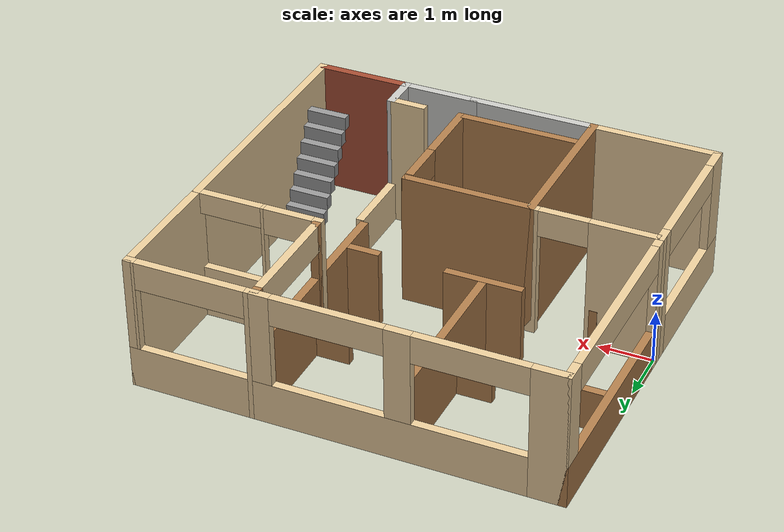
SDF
<?xml version='1.0'?>
<sdf version='1.5'>
  <model name='officeFloor'>
    <pose frame=''>3.815 0.61 0 0 -0 0</pose>
    <link name='Stairs_2'>
      <visual name='Stairs_2_Visual_0'>
        <pose frame=''>3.37694 -1.65753 0.125 0 -0 0</pose>
        <geometry>
          <box>
            <size>0.8 0.16125 0.25</size>
          </box>
        </geometry>
        <material>
          <script>
            <uri>file://media/materials/scripts/gazebo.material</uri>
            <name>Gazebo/Grey</name>
          </script>
          <ambient>1 1 1 1</ambient>
        </material>
        <meta>
          <layer>0</layer>
        </meta>
      </visual>
      <collision name='Stairs_2_Collision_0'>
        <geometry>
          <box>
            <size>0.8 0.16125 0.25</size>
          </box>
        </geometry>
        <pose frame=''>3.37694 -1.65753 0.125 0 -0 0</pose>
      </collision>
      <visual name='Stairs_2_Visual_1'>
        <pose frame=''>3.37694 -1.81879 0.375 0 -0 0</pose>
        <geometry>
          <box>
            <size>0.8 0.16125 0.25</size>
          </box>
        </geometry>
        <material>
          <script>
            <uri>file://media/materials/scripts/gazebo.material</uri>
            <name>Gazebo/Grey</name>
          </script>
          <ambient>1 1 1 1</ambient>
        </material>
        <meta>
          <layer>0</layer>
        </meta>
      </visual>
      <collision name='Stairs_2_Collision_1'>
        <geometry>
          <box>
            <size>0.8 0.16125 0.25</size>
          </box>
        </geometry>
        <pose frame=''>3.37694 -1.81879 0.375 0 -0 0</pose>
      </collision>
      <visual name='Stairs_2_Visual_2'>
        <pose frame=''>3.37694 -1.98003 0.625 0 -0 0</pose>
        <geometry>
          <box>
            <size>0.8 0.16125 0.25</size>
          </box>
        </geometry>
        <material>
          <script>
            <uri>file://media/materials/scripts/gazebo.material</uri>
            <name>Gazebo/Grey</name>
          </script>
          <ambient>1 1 1 1</ambient>
        </material>
        <meta>
          <layer>0</layer>
        </meta>
      </visual>
      <collision name='Stairs_2_Collision_2'>
        <geometry>
          <box>
            <size>0.8 0.16125 0.25</size>
          </box>
        </geometry>
        <pose frame=''>3.37694 -1.98003 0.625 0 -0 0</pose>
      </collision>
      <visual name='Stairs_2_Visual_3'>
        <pose frame=''>3.37694 -2.14128 0.875 0 -0 0</pose>
        <geometry>
          <box>
            <size>0.8 0.16125 0.25</size>
          </box>
        </geometry>
        <material>
          <script>
            <uri>file://media/materials/scripts/gazebo.material</uri>
            <name>Gazebo/Grey</name>
          </script>
          <ambient>1 1 1 1</ambient>
        </material>
        <meta>
          <layer>0</layer>
        </meta>
      </visual>
      <collision name='Stairs_2_Collision_3'>
        <geometry>
          <box>
            <size>0.8 0.16125 0.25</size>
          </box>
        </geometry>
        <pose frame=''>3.37694 -2.14128 0.875 0 -0 0</pose>
      </collision>
      <visual name='Stairs_2_Visual_4'>
        <pose frame=''>3.37694 -2.30254 1.125 0 -0 0</pose>
        <geometry>
          <box>
            <size>0.8 0.16125 0.25</size>
          </box>
        </geometry>
        <material>
          <script>
            <uri>file://media/materials/scripts/gazebo.material</uri>
            <name>Gazebo/Grey</name>
          </script>
          <ambient>1 1 1 1</ambient>
        </material>
        <meta>
          <layer>0</layer>
        </meta>
      </visual>
      <collision name='Stairs_2_Collision_4'>
        <geometry>
          <box>
            <size>0.8 0.16125 0.25</size>
          </box>
        </geometry>
        <pose frame=''>3.37694 -2.30254 1.125 0 -0 0</pose>
      </collision>
      <visual name='Stairs_2_Visual_5'>
        <pose frame=''>3.37694 -2.46379 1.375 0 -0 0</pose>
        <geometry>
          <box>
            <size>0.8 0.16125 0.25</size>
          </box>
        </geometry>
        <material>
          <script>
            <uri>file://media/materials/scripts/gazebo.material</uri>
            <name>Gazebo/Grey</name>
          </script>
          <ambient>1 1 1 1</ambient>
        </material>
        <meta>
          <layer>0</layer>
        </meta>
      </visual>
      <collision name='Stairs_2_Collision_5'>
        <geometry>
          <box>
            <size>0.8 0.16125 0.25</size>
          </box>
        </geometry>
        <pose frame=''>3.37694 -2.46379 1.375 0 -0 0</pose>
      </collision>
      <visual name='Stairs_2_Visual_6'>
        <pose frame=''>3.37694 -2.62504 1.625 0 -0 0</pose>
        <geometry>
          <box>
            <size>0.8 0.16125 0.25</size>
          </box>
        </geometry>
        <material>
          <script>
            <uri>file://media/materials/scripts/gazebo.material</uri>
            <name>Gazebo/Grey</name>
          </script>
          <ambient>1 1 1 1</ambient>
        </material>
        <meta>
          <layer>0</layer>
        </meta>
      </visual>
      <collision name='Stairs_2_Collision_6'>
        <geometry>
          <box>
            <size>0.8 0.16125 0.25</size>
          </box>
        </geometry>
        <pose frame=''>3.37694 -2.62504 1.625 0 -0 0</pose>
      </collision>
      <visual name='Stairs_2_Visual_7'>
        <pose frame=''>3.37694 -2.78628 1.875 0 -0 0</pose>
        <geometry>
          <box>
            <size>0.8 0.16125 0.25</size>
          </box>
        </geometry>
        <material>
          <script>
            <uri>file://media/materials/scripts/gazebo.material</uri>
            <name>Gazebo/Grey</name>
          </script>
          <ambient>1 1 1 1</ambient>
        </material>
        <meta>
          <layer>0</layer>
        </meta>
      </visual>
      <collision name='Stairs_2_Collision_7'>
        <geometry>
          <box>
            <size>0.8 0.16125 0.25</size>
          </box>
        </geometry>
        <pose frame=''>3.37694 -2.78628 1.875 0 -0 0</pose>
      </collision>
    </link>
    <link name='Wall_105'>
      <collision name='Wall_105_Collision'>
        <geometry>
          <box>
            <size>0.76 0.15 0.76</size>
          </box>
        </geometry>
        <pose frame=''>0 0 0.38 0 -0 0</pose>
      </collision>
      <visual name='Wall_105_Visual'>
        <pose frame=''>0 0 0.38 0 -0 0</pose>
        <geometry>
          <box>
            <size>0.76 0.15 0.76</size>
          </box>
        </geometry>
        <material>
          <script>
            <uri>file://media/materials/scripts/gazebo.material</uri>
            <name>Gazebo/Wood</name>
          </script>
          <ambient>1 1 1 1</ambient>
        </material>
        <meta>
          <layer>0</layer>
        </meta>
      </visual>
      <pose frame=''>-3.489 1.525 0 0 -0 0</pose>
    </link>
    <link name='Wall_108'>
      <collision name='Wall_108_Collision'>
        <geometry>
          <box>
            <size>3.26 0.15 1.46</size>
          </box>
        </geometry>
        <pose frame=''>-0.2 0 0.73 0 -0 0</pose>
      </collision>
      <visual name='Wall_108_Visual'>
        <pose frame=''>-0.2 0 0.73 0 -0 0</pose>
        <geometry>
          <box>
            <size>3.26 0.15 1.46</size>
          </box>
        </geometry>
        <material>
          <script>
            <uri>file://media/materials/scripts/gazebo.material</uri>
            <name>Gazebo/Wood</name>
          </script>
          <ambient>1 1 1 1</ambient>
        </material>
        <meta>
          <layer>0</layer>
        </meta>
      </visual>
      <pose frame=''>-1.07 1.748 0 0 -0 -1.5708</pose>
    </link>
    <link name='Wall_110'>
      <collision name='Wall_110_Collision'>
        <geometry>
          <box>
            <size>1.75 0.15 0.76</size>
          </box>
        </geometry>
        <pose frame=''>0 0 0.38 0 -0 0</pose>
      </collision>
      <visual name='Wall_110_Visual'>
        <pose frame=''>0 0 0.38 0 -0 0</pose>
        <geometry>
          <box>
            <size>1.75 0.15 0.76</size>
          </box>
        </geometry>
        <material>
          <script>
            <uri>file://media/materials/scripts/gazebo.material</uri>
            <name>Gazebo/Wood</name>
          </script>
          <ambient>1 1 1 1</ambient>
        </material>
        <meta>
          <layer>0</layer>
        </meta>
      </visual>
      <pose frame=''>-2.724 -1.403 0 0 -0 -1.5708</pose>
    </link>
    <link name='Wall_112'>
      <collision name='Wall_112_Collision'>
        <geometry>
          <box>
            <size>0.76 0.15 0.76</size>
          </box>
        </geometry>
        <pose frame=''>0 0 0.38 0 -0 0</pose>
      </collision>
      <visual name='Wall_112_Visual'>
        <pose frame=''>0 0 0.38 0 -0 0</pose>
        <geometry>
          <box>
            <size>0.76 0.15 0.76</size>
          </box>
        </geometry>
        <material>
          <script>
            <uri>file://media/materials/scripts/gazebo.material</uri>
            <name>Gazebo/Wood</name>
          </script>
          <ambient>1 1 1 1</ambient>
        </material>
        <meta>
          <layer>0</layer>
        </meta>
      </visual>
      <pose frame=''>1.215 1.525 0 0 -0 3.14159</pose>
    </link>
    <link name='Wall_114'>
      <collision name='Wall_114_Collision'>
        <geometry>
          <box>
            <size>0.82 0.15 0.76</size>
          </box>
        </geometry>
        <pose frame=''>0 0 0.38 0 -0 0</pose>
      </collision>
      <visual name='Wall_114_Visual'>
        <pose frame=''>0 0 0.38 0 -0 0</pose>
        <geometry>
          <box>
            <size>0.82 0.15 0.76</size>
          </box>
        </geometry>
        <material>
          <script>
            <uri>file://media/materials/scripts/gazebo.material</uri>
            <name>Gazebo/Wood</name>
          </script>
          <ambient>1 1 1 1</ambient>
        </material>
        <meta>
          <layer>0</layer>
        </meta>
      </visual>
      <pose frame=''>-1.37 1.525 0 0 -0 3.14159</pose>
    </link>
    <link name='Wall_116'>
      <collision name='Wall_116_Collision'>
        <geometry>
          <box>
            <size>0.76 0.15 0.76</size>
          </box>
        </geometry>
        <pose frame=''>0 0 0.38 0 -0 0</pose>
      </collision>
      <visual name='Wall_116_Visual'>
        <pose frame=''>0 0 0.38 0 -0 0</pose>
        <geometry>
          <box>
            <size>0.76 0.15 0.76</size>
          </box>
        </geometry>
        <material>
          <script>
            <uri>file://media/materials/scripts/gazebo.material</uri>
            <name>Gazebo/Wood</name>
          </script>
          <ambient>1 1 1 1</ambient>
        </material>
        <meta>
          <layer>0</layer>
        </meta>
      </visual>
      <pose frame=''>-0.73 1.525 0 0 -0 0</pose>
    </link>
    <link name='Wall_118'>
      <collision name='Wall_118_Collision'>
        <geometry>
          <box>
            <size>1.43 0.15 1.46</size>
          </box>
        </geometry>
        <pose frame=''>0 0 0.73 0 -0 0</pose>
      </collision>
      <visual name='Wall_118_Visual'>
        <pose frame=''>0 0 0.73 0 -0 0</pose>
        <geometry>
          <box>
            <size>1.43 0.15 1.46</size>
          </box>
        </geometry>
        <material>
          <script>
            <uri>file://media/materials/scripts/gazebo.material</uri>
            <name>Gazebo/Wood</name>
          </script>
          <ambient>1 1 1 1</ambient>
        </material>
        <meta>
          <layer>0</layer>
        </meta>
      </visual>
      <pose frame=''>-1.065 0.3 0 0 -0 0</pose>
    </link>
    <link name='Wall_50'>
      <pose frame=''>-3.815 1.45 0 0 -0 1.5708</pose>
      <visual name='Wall_50_Visual_0'>
        <pose frame=''>-1.95959 0 1.25 0 -0 0</pose>
        <geometry>
          <box>
            <size>0.35082 0.15 2.5</size>
          </box>
        </geometry>
        <material>
          <script>
            <uri>file://media/materials/scripts/gazebo.material</uri>
            <name>Gazebo/Grey</name>
          </script>
          <ambient>0.921569 0.807843 0.615686 1</ambient>
        </material>
        <meta>
          <layer>0</layer>
        </meta>
      </visual>
      <collision name='Wall_50_Collision_0'>
        <geometry>
          <box>
            <size>0.35082 0.15 2.5</size>
          </box>
        </geometry>
        <pose frame=''>-1.95959 0 1.25 0 -0 0</pose>
      </collision>
      <visual name='Wall_50_Visual_1'>
        <pose frame=''>0.17541 0 0.39 0 -0 0</pose>
        <geometry>
          <box>
            <size>3.91918 0.15 0.78</size>
          </box>
        </geometry>
        <material>
          <script>
            <uri>file://media/materials/scripts/gazebo.material</uri>
            <name>Gazebo/Wood</name>
          </script>
          <ambient>1 1 1 1</ambient>
        </material>
        <meta>
          <layer>0</layer>
        </meta>
      </visual>
      <collision name='Wall_50_Collision_1'>
        <geometry>
          <box>
            <size>3.91918 0.15 0.78</size>
          </box>
        </geometry>
        <pose frame=''>0.17541 0 0.39 0 -0 0</pose>
      </collision>
      <visual name='Wall_50_Visual_2'>
        <pose frame=''>1.92541 0 1.64 0 -0 0</pose>
        <geometry>
          <box>
            <size>0.41918 0.15 1.72</size>
          </box>
        </geometry>
        <material>
          <script>
            <uri>file://media/materials/scripts/gazebo.material</uri>
            <name>Gazebo/Grey</name>
          </script>
          <ambient>0.921569 0.807843 0.615686 1</ambient>
        </material>
        <meta>
          <layer>0</layer>
        </meta>
      </visual>
      <collision name='Wall_50_Collision_2'>
        <geometry>
          <box>
            <size>0.41918 0.15 1.72</size>
          </box>
        </geometry>
        <pose frame=''>1.92541 0 1.64 0 -0 0</pose>
      </collision>
      <visual name='Wall_50_Visual_3'>
        <pose frame=''>-0.03418 0 2.24 0 -0 0</pose>
        <geometry>
          <box>
            <size>3.5 0.15 0.52</size>
          </box>
        </geometry>
        <material>
          <script>
            <uri>file://media/materials/scripts/gazebo.material</uri>
            <name>Gazebo/Grey</name>
          </script>
          <ambient>0.921569 0.807843 0.615686 1</ambient>
        </material>
        <meta>
          <layer>0</layer>
        </meta>
      </visual>
      <collision name='Wall_50_Collision_3'>
        <geometry>
          <box>
            <size>3.5 0.15 0.52</size>
          </box>
        </geometry>
        <pose frame=''>-0.03418 0 2.24 0 -0 0</pose>
      </collision>
    </link>
    <link name='Wall_52'>
      <pose frame=''>-2.67 -0.61 0 0 -0 0</pose>
      <visual name='Wall_52_Visual_0'>
        <pose frame=''>-0.560434 0 1.25 0 -0 0</pose>
        <geometry>
          <box>
            <size>1.31913 0.15 2.5</size>
          </box>
        </geometry>
        <material>
          <script>
            <uri>file://media/materials/scripts/gazebo.material</uri>
            <name>Gazebo/Grey</name>
          </script>
          <ambient>0.921569 0.807843 0.615686 1</ambient>
        </material>
        <meta>
          <layer>0</layer>
        </meta>
      </visual>
      <collision name='Wall_52_Collision_0'>
        <geometry>
          <box>
            <size>1.31913 0.15 2.5</size>
          </box>
        </geometry>
        <pose frame=''>-0.560434 0 1.25 0 -0 0</pose>
      </collision>
      <visual name='Wall_52_Visual_1'>
        <pose frame=''>1.10957 0 1.25 0 -0 0</pose>
        <geometry>
          <box>
            <size>0.220869 0.15 2.5</size>
          </box>
        </geometry>
        <material>
          <script>
            <uri>file://media/materials/scripts/gazebo.material</uri>
            <name>Gazebo/Grey</name>
          </script>
          <ambient>0.921569 0.807843 0.615686 1</ambient>
        </material>
        <meta>
          <layer>0</layer>
        </meta>
      </visual>
      <collision name='Wall_52_Collision_1'>
        <geometry>
          <box>
            <size>0.220869 0.15 2.5</size>
          </box>
        </geometry>
        <pose frame=''>1.10957 0 1.25 0 -0 0</pose>
      </collision>
      <visual name='Wall_52_Visual_2'>
        <pose frame=''>0.549131 0 2.25 0 -0 0</pose>
        <geometry>
          <box>
            <size>0.9 0.15 0.5</size>
          </box>
        </geometry>
        <material>
          <script>
            <uri>file://media/materials/scripts/gazebo.material</uri>
            <name>Gazebo/Grey</name>
          </script>
          <ambient>0.921569 0.807843 0.615686 1</ambient>
        </material>
        <meta>
          <layer>0</layer>
        </meta>
      </visual>
      <collision name='Wall_52_Collision_2'>
        <geometry>
          <box>
            <size>0.9 0.15 0.5</size>
          </box>
        </geometry>
        <pose frame=''>0.549131 0 2.25 0 -0 0</pose>
      </collision>
    </link>
    <link name='Wall_54'>
      <pose frame=''>-3.815 -2.06 0 0 -0 -1.5708</pose>
      <visual name='Wall_54_Visual_0'>
        <pose frame=''>-1.34915 0 1.25 0 -0 0</pose>
        <geometry>
          <box>
            <size>0.351709 0.15 2.5</size>
          </box>
        </geometry>
        <material>
          <script>
            <uri>file://media/materials/scripts/gazebo.material</uri>
            <name>Gazebo/Grey</name>
          </script>
          <ambient>0.921569 0.807843 0.615686 1</ambient>
        </material>
        <meta>
          <layer>0</layer>
        </meta>
      </visual>
      <collision name='Wall_54_Collision_0'>
        <geometry>
          <box>
            <size>0.351709 0.15 2.5</size>
          </box>
        </geometry>
        <pose frame=''>-1.34915 0 1.25 0 -0 0</pose>
      </collision>
      <visual name='Wall_54_Visual_1'>
        <pose frame=''>0.175854 0 0.39 0 -0 0</pose>
        <geometry>
          <box>
            <size>2.69829 0.15 0.78</size>
          </box>
        </geometry>
        <material>
          <script>
            <uri>file://media/materials/scripts/gazebo.material</uri>
            <name>Gazebo/Grey</name>
          </script>
          <ambient>0.921569 0.807843 0.615686 1</ambient>
        </material>
        <meta>
          <layer>0</layer>
        </meta>
      </visual>
      <collision name='Wall_54_Collision_1'>
        <geometry>
          <box>
            <size>2.69829 0.15 0.78</size>
          </box>
        </geometry>
        <pose frame=''>0.175854 0 0.39 0 -0 0</pose>
      </collision>
      <visual name='Wall_54_Visual_2'>
        <pose frame=''>1.27585 0 1.64 0 -0 0</pose>
        <geometry>
          <box>
            <size>0.498291 0.15 1.72</size>
          </box>
        </geometry>
        <material>
          <script>
            <uri>file://media/materials/scripts/gazebo.material</uri>
            <name>Gazebo/Grey</name>
          </script>
          <ambient>0.921569 0.807843 0.615686 1</ambient>
        </material>
        <meta>
          <layer>0</layer>
        </meta>
      </visual>
      <collision name='Wall_54_Collision_2'>
        <geometry>
          <box>
            <size>0.498291 0.15 1.72</size>
          </box>
        </geometry>
        <pose frame=''>1.27585 0 1.64 0 -0 0</pose>
      </collision>
      <visual name='Wall_54_Visual_3'>
        <pose frame=''>-0.073291 0 2.24 0 -0 0</pose>
        <geometry>
          <box>
            <size>2.2 0.15 0.52</size>
          </box>
        </geometry>
        <material>
          <script>
            <uri>file://media/materials/scripts/gazebo.material</uri>
            <name>Gazebo/Grey</name>
          </script>
          <ambient>0.921569 0.807843 0.615686 1</ambient>
        </material>
        <meta>
          <layer>0</layer>
        </meta>
      </visual>
      <collision name='Wall_54_Collision_3'>
        <geometry>
          <box>
            <size>2.2 0.15 0.52</size>
          </box>
        </geometry>
        <pose frame=''>-0.073291 0 2.24 0 -0 0</pose>
      </collision>
    </link>
    <link name='Wall_56'>
      <collision name='Wall_56_Collision'>
        <geometry>
          <box>
            <size>3.05 0.15 2.5</size>
          </box>
        </geometry>
        <pose frame=''>0 0 1.25 0 -0 0</pose>
      </collision>
      <visual name='Wall_56_Visual'>
        <pose frame=''>0 0 1.25 0 -0 0</pose>
        <geometry>
          <box>
            <size>3.05 0.15 2.5</size>
          </box>
        </geometry>
        <material>
          <script>
            <uri>file://media/materials/scripts/gazebo.material</uri>
            <name>Gazebo/Wood</name>
          </script>
          <ambient>1 1 1 1</ambient>
        </material>
        <meta>
          <layer>0</layer>
        </meta>
      </visual>
      <pose frame=''>-1.525 -2.06 0 0 -0 -1.5708</pose>
    </link>
    <link name='Wall_58'>
      <collision name='Wall_58_Collision'>
        <geometry>
          <box>
            <size>2.44 0.15 2.5</size>
          </box>
        </geometry>
        <pose frame=''>0 0 1.25 0 -0 0</pose>
      </collision>
      <visual name='Wall_58_Visual'>
        <pose frame=''>0 0 1.25 0 -0 0</pose>
        <geometry>
          <box>
            <size>2.44 0.15 2.5</size>
          </box>
        </geometry>
        <material>
          <script>
            <uri>file://media/materials/scripts/gazebo.material</uri>
            <name>Gazebo/Grey</name>
          </script>
          <ambient>0.921569 0.807843 0.615686 1</ambient>
        </material>
        <meta>
          <layer>0</layer>
        </meta>
      </visual>
      <pose frame=''>-2.67 -3.51 0 0 -0 3.14159</pose>
    </link>
    <link name='Wall_60'>
      <collision name='Wall_60_Collision'>
        <geometry>
          <box>
            <size>2.44 0.15 2.5</size>
          </box>
        </geometry>
        <pose frame=''>0 0 1.25 0 -0 0</pose>
      </collision>
      <visual name='Wall_60_Visual'>
        <pose frame=''>0 0 1.25 0 -0 0</pose>
        <geometry>
          <box>
            <size>2.44 0.15 2.5</size>
          </box>
        </geometry>
        <material>
          <script>
            <uri>file://media/materials/scripts/gazebo.material</uri>
            <name>Gazebo/Wood</name>
          </script>
          <ambient>1 1 1 1</ambient>
        </material>
        <meta>
          <layer>0</layer>
        </meta>
      </visual>
      <pose frame=''>-0.38 -0.61 0 0 -0 0</pose>
    </link>
    <link name='Wall_62'>
      <pose frame=''>0.765 -1.755 0 0 -0 -1.5708</pose>
      <visual name='Wall_62_Visual_0'>
        <pose frame=''>-1.13395 0 1.25 0 -0 0</pose>
        <geometry>
          <box>
            <size>0.172097 0.15 2.5</size>
          </box>
        </geometry>
        <material>
          <script>
            <uri>file://media/materials/scripts/gazebo.material</uri>
            <name>Gazebo/Wood</name>
          </script>
          <ambient>1 1 1 1</ambient>
        </material>
        <meta>
          <layer>0</layer>
        </meta>
      </visual>
      <collision name='Wall_62_Collision_0'>
        <geometry>
          <box>
            <size>0.172097 0.15 2.5</size>
          </box>
        </geometry>
        <pose frame=''>-1.13395 0 1.25 0 -0 0</pose>
      </collision>
      <visual name='Wall_62_Visual_1'>
        <pose frame=''>0.536048 0 1.25 0 -0 0</pose>
        <geometry>
          <box>
            <size>1.3679 0.15 2.5</size>
          </box>
        </geometry>
        <material>
          <script>
            <uri>file://media/materials/scripts/gazebo.material</uri>
            <name>Gazebo/Wood</name>
          </script>
          <ambient>1 1 1 1</ambient>
        </material>
        <meta>
          <layer>0</layer>
        </meta>
      </visual>
      <collision name='Wall_62_Collision_1'>
        <geometry>
          <box>
            <size>1.3679 0.15 2.5</size>
          </box>
        </geometry>
        <pose frame=''>0.536048 0 1.25 0 -0 0</pose>
      </collision>
      <visual name='Wall_62_Visual_2'>
        <pose frame=''>-0.597903 0 2.25 0 -0 0</pose>
        <geometry>
          <box>
            <size>0.9 0.15 0.5</size>
          </box>
        </geometry>
        <material>
          <script>
            <uri>file://media/materials/scripts/gazebo.material</uri>
            <name>Gazebo/Wood</name>
          </script>
          <ambient>1 1 1 1</ambient>
        </material>
        <meta>
          <layer>0</layer>
        </meta>
      </visual>
      <collision name='Wall_62_Collision_2'>
        <geometry>
          <box>
            <size>0.9 0.15 0.5</size>
          </box>
        </geometry>
        <pose frame=''>-0.597903 0 2.25 0 -0 0</pose>
      </collision>
    </link>
    <link name='Wall_64'>
      <collision name='Wall_64_Collision'>
        <geometry>
          <box>
            <size>2.44 0.15 2.5</size>
          </box>
        </geometry>
        <pose frame=''>0 0 1.25 0 -0 0</pose>
      </collision>
      <visual name='Wall_64_Visual'>
        <pose frame=''>0 0 1.25 0 -0 0</pose>
        <geometry>
          <box>
            <size>2.44 0.15 2.5</size>
          </box>
        </geometry>
        <material>
          <script>
            <uri>file://media/materials/scripts/gazebo.material</uri>
            <name>Gazebo/Wood</name>
          </script>
          <ambient>1 1 1 1</ambient>
        </material>
        <meta>
          <layer>0</layer>
        </meta>
      </visual>
      <pose frame=''>-0.38 -2.9 0 0 -0 3.14159</pose>
    </link>
    <link name='Wall_66'>
      <collision name='Wall_66_Collision'>
        <geometry>
          <box>
            <size>2.44 0.15 2.5</size>
          </box>
        </geometry>
        <pose frame=''>0 0 1.25 0 -0 0</pose>
      </collision>
      <visual name='Wall_66_Visual'>
        <pose frame=''>0 0 1.25 0 -0 0</pose>
        <geometry>
          <box>
            <size>2.44 0.15 2.5</size>
          </box>
        </geometry>
        <material>
          <script>
            <uri>file://media/materials/scripts/gazebo.material</uri>
            <name>Gazebo/CeilingTiled</name>
          </script>
          <ambient>1 1 1 1</ambient>
        </material>
        <meta>
          <layer>0</layer>
        </meta>
      </visual>
      <pose frame=''>-0.38 -3.51 0 0 -0 0</pose>
    </link>
    <link name='Wall_68'>
      <pose frame=''>-1.145 3.51 0 0 -0 0</pose>
      <visual name='Wall_68_Visual_0'>
        <pose frame=''>-2.41081 0 1.25 0 -0 0</pose>
        <geometry>
          <box>
            <size>0.668381 0.15 2.5</size>
          </box>
        </geometry>
        <material>
          <script>
            <uri>file://media/materials/scripts/gazebo.material</uri>
            <name>Gazebo/Grey</name>
          </script>
          <ambient>0.921569 0.807843 0.615686 1</ambient>
        </material>
        <meta>
          <layer>0</layer>
        </meta>
      </visual>
      <collision name='Wall_68_Collision_0'>
        <geometry>
          <box>
            <size>0.668381 0.15 2.5</size>
          </box>
        </geometry>
        <pose frame=''>-2.41081 0 1.25 0 -0 0</pose>
      </collision>
      <visual name='Wall_68_Visual_1'>
        <pose frame=''>0.334191 0 0.39 0 -0 0</pose>
        <geometry>
          <box>
            <size>4.82162 0.15 0.78</size>
          </box>
        </geometry>
        <material>
          <script>
            <uri>file://media/materials/scripts/gazebo.material</uri>
            <name>Gazebo/Grey</name>
          </script>
          <ambient>0.921569 0.807843 0.615686 1</ambient>
        </material>
        <meta>
          <layer>0</layer>
        </meta>
      </visual>
      <collision name='Wall_68_Collision_1'>
        <geometry>
          <box>
            <size>4.82162 0.15 0.78</size>
          </box>
        </geometry>
        <pose frame=''>0.334191 0 0.39 0 -0 0</pose>
      </collision>
      <visual name='Wall_68_Visual_2'>
        <pose frame=''>0.15529 0 1.64 0 -0 0</pose>
        <geometry>
          <box>
            <size>0.463818 0.15 1.72</size>
          </box>
        </geometry>
        <material>
          <script>
            <uri>file://media/materials/scripts/gazebo.material</uri>
            <name>Gazebo/Grey</name>
          </script>
          <ambient>0.921569 0.807843 0.615686 1</ambient>
        </material>
        <meta>
          <layer>0</layer>
        </meta>
      </visual>
      <collision name='Wall_68_Collision_2'>
        <geometry>
          <box>
            <size>0.463818 0.15 1.72</size>
          </box>
        </geometry>
        <pose frame=''>0.15529 0 1.64 0 -0 0</pose>
      </collision>
      <visual name='Wall_68_Visual_3'>
        <pose frame=''>2.5661 0 1.64 0 -0 0</pose>
        <geometry>
          <box>
            <size>0.357801 0.15 1.72</size>
          </box>
        </geometry>
        <material>
          <script>
            <uri>file://media/materials/scripts/gazebo.material</uri>
            <name>Gazebo/Grey</name>
          </script>
          <ambient>0.921569 0.807843 0.615686 1</ambient>
        </material>
        <meta>
          <layer>0</layer>
        </meta>
      </visual>
      <collision name='Wall_68_Collision_3'>
        <geometry>
          <box>
            <size>0.357801 0.15 1.72</size>
          </box>
        </geometry>
        <pose frame=''>2.5661 0 1.64 0 -0 0</pose>
      </collision>
      <visual name='Wall_68_Visual_4'>
        <pose frame=''>-1.07662 0 2.24 0 -0 0</pose>
        <geometry>
          <box>
            <size>2 0.15 0.52</size>
          </box>
        </geometry>
        <material>
          <script>
            <uri>file://media/materials/scripts/gazebo.material</uri>
            <name>Gazebo/Grey</name>
          </script>
          <ambient>0.921569 0.807843 0.615686 1</ambient>
        </material>
        <meta>
          <layer>0</layer>
        </meta>
      </visual>
      <collision name='Wall_68_Collision_4'>
        <geometry>
          <box>
            <size>2 0.15 0.52</size>
          </box>
        </geometry>
        <pose frame=''>-1.07662 0 2.24 0 -0 0</pose>
      </collision>
      <visual name='Wall_68_Visual_5'>
        <pose frame=''>1.3872 0 2.24 0 -0 0</pose>
        <geometry>
          <box>
            <size>2 0.15 0.52</size>
          </box>
        </geometry>
        <material>
          <script>
            <uri>file://media/materials/scripts/gazebo.material</uri>
            <name>Gazebo/Grey</name>
          </script>
          <ambient>0.921569 0.807843 0.615686 1</ambient>
        </material>
        <meta>
          <layer>0</layer>
        </meta>
      </visual>
      <collision name='Wall_68_Collision_5'>
        <geometry>
          <box>
            <size>2 0.15 0.52</size>
          </box>
        </geometry>
        <pose frame=''>1.3872 0 2.24 0 -0 0</pose>
      </collision>
    </link>
    <link name='Wall_70'>
      <pose frame=''>1.525 1.45 0 0 -0 -1.5708</pose>
      <visual name='Wall_70_Visual_0'>
        <pose frame=''>-2.01925 0 1.25 0 -0 0</pose>
        <geometry>
          <box>
            <size>0.231495 0.15 2.5</size>
          </box>
        </geometry>
        <material>
          <script>
            <uri>file://media/materials/scripts/gazebo.material</uri>
            <name>Gazebo/Wood</name>
          </script>
          <ambient>1 1 1 1</ambient>
        </material>
        <meta>
          <layer>0</layer>
        </meta>
      </visual>
      <collision name='Wall_70_Collision_0'>
        <geometry>
          <box>
            <size>0.231495 0.15 2.5</size>
          </box>
        </geometry>
        <pose frame=''>-2.01925 0 1.25 0 -0 0</pose>
      </collision>
      <visual name='Wall_70_Visual_1'>
        <pose frame=''>0.016 0 0.73 0 -0 0</pose>
        <geometry>
          <box>
            <size>3.8385 0.15 1.46</size>
          </box>
        </geometry>
        <material>
          <script>
            <uri>file://media/materials/scripts/gazebo.material</uri>
            <name>Gazebo/Wood</name>
          </script>
          <ambient>1 1 1 1</ambient>
        </material>
        <meta>
          <layer>0</layer>
        </meta>
      </visual>
      <collision name='Wall_70_Collision_1'>
        <geometry>
          <box>
            <size>3.8385 0.15 1.46</size>
          </box>
        </geometry>
        <pose frame=''>0.016 0 0.73 0 -0 0</pose>
      </collision>
      <visual name='Wall_70_Visual_2'>
        <pose frame=''>0.109009 0 1.64 0 -0 0</pose>
        <geometry>
          <box>
            <size>0.15 0.15 1.72</size>
          </box>
        </geometry>
        <material>
          <script>
            <uri>file://media/materials/scripts/gazebo.material</uri>
            <name>Gazebo/Wood</name>
          </script>
          <ambient>1 1 1 1</ambient>
        </material>
        <meta>
          <layer>0</layer>
        </meta>
      </visual>
      <collision name='Wall_70_Collision_2'>
        <geometry>
          <box>
            <size>0 0 0</size>
          </box>
        </geometry>
        <pose frame=''>1.11575 0 1.64 0 -0 0</pose>
      </collision>
      <visual name='Wall_70_Visual_3'>
        <pose frame=''>-0.903505 0 2.24 0 -0 0</pose>
        <geometry>
          <box>
            <size>2 0.15 0.52</size>
          </box>
        </geometry>
        <material>
          <script>
            <uri>file://media/materials/scripts/gazebo.material</uri>
            <name>Gazebo/Grey</name>
          </script>
          <ambient>0.921569 0.807843 0.615686 1</ambient>
        </material>
        <meta>
          <layer>0</layer>
        </meta>
      </visual>
      <collision name='Wall_70_Collision_3'>
        <geometry>
          <box>
            <size>2 0.15 0.52</size>
          </box>
        </geometry>
        <pose frame=''>-0.903505 0 2.24 0 -0 0</pose>
      </collision>
    </link>

    <!-- New Wall -->
    <link name='Wall_120'>
      <collision name='Wall_120_Collision'>
        <geometry>
          <box>
            <size>0.715 0.15 1.46</size>
          </box>
        </geometry>
        <pose frame=''>0 0 0.73 0 -0 0</pose>
      </collision>
      <visual name='Wall_120_Visual'>
        <pose frame=''>0 0 0.73 0 -0 0</pose>
        <geometry>
          <box>
            <size>0.715 0.15 1.46</size>
          </box>
        </geometry>
        <material>
          <script>
            <uri>file://media/materials/scripts/gazebo.material</uri>
            <name>Gazebo/Wood</name>
          </script>
          <ambient>1 1 1 1</ambient>
        </material>
        <meta>
          <layer>0</layer>
        </meta>
      </visual>
      <pose frame=''>1.215 0.3 0 0 -0 0</pose>
    </link>

    <link name='Wall_72'>
      <pose frame=''>2.67 3.51 0 0 -0 0</pose>
      <visual name='Wall_72_Visual_0'>
        <pose frame=''>-1.10186 0 1.25 0 -0 0</pose>
        <geometry>
          <box>
            <size>0.236274 0.15 2.5</size>
          </box>
        </geometry>
        <material>
          <script>
            <uri>file://media/materials/scripts/gazebo.material</uri>
            <name>Gazebo/Grey</name>
          </script>
          <ambient>0.921569 0.807843 0.615686 1</ambient>
        </material>
        <meta>
          <layer>0</layer>
        </meta>
      </visual>
      <collision name='Wall_72_Collision_0'>
        <geometry>
          <box>
            <size>0.236274 0.15 2.5</size>
          </box>
        </geometry>
        <pose frame=''>-1.10186 0 1.25 0 -0 0</pose>
      </collision>
      <visual name='Wall_72_Visual_1'>
        <pose frame=''>0.118137 0 0.39 0 -0 0</pose>
        <geometry>
          <box>
            <size>2.20373 0.15 0.78</size>
          </box>
        </geometry>
        <material>
          <script>
            <uri>file://media/materials/scripts/gazebo.material</uri>
            <name>Gazebo/Grey</name>
          </script>
          <ambient>0.921569 0.807843 0.615686 1</ambient>
        </material>
        <meta>
          <layer>0</layer>
        </meta>
      </visual>
      <collision name='Wall_72_Collision_1'>
        <geometry>
          <box>
            <size>2.20373 0.15 0.78</size>
          </box>
        </geometry>
        <pose frame=''>0.118137 0 0.39 0 -0 0</pose>
      </collision>
      <visual name='Wall_72_Visual_2'>
        <pose frame=''>1.11814 0 1.64 0 -0 0</pose>
        <geometry>
          <box>
            <size>0.203726 0.15 1.72</size>
          </box>
        </geometry>
        <material>
          <script>
            <uri>file://media/materials/scripts/gazebo.material</uri>
            <name>Gazebo/Grey</name>
          </script>
          <ambient>0.921569 0.807843 0.615686 1</ambient>
        </material>
        <meta>
          <layer>0</layer>
        </meta>
      </visual>
      <collision name='Wall_72_Collision_2'>
        <geometry>
          <box>
            <size>0.203726 0.15 1.72</size>
          </box>
        </geometry>
        <pose frame=''>1.11814 0 1.64 0 -0 0</pose>
      </collision>
      <visual name='Wall_72_Visual_3'>
        <pose frame=''>0.016274 0 2.24 0 -0 0</pose>
        <geometry>
          <box>
            <size>2 0.15 0.52</size>
          </box>
        </geometry>
        <material>
          <script>
            <uri>file://media/materials/scripts/gazebo.material</uri>
            <name>Gazebo/Grey</name>
          </script>
          <ambient>0.921569 0.807843 0.615686 1</ambient>
        </material>
        <meta>
          <layer>0</layer>
        </meta>
      </visual>
      <collision name='Wall_72_Collision_3'>
        <geometry>
          <box>
            <size>2 0.15 0.52</size>
          </box>
        </geometry>
        <pose frame=''>0.016274 0 2.24 0 -0 0</pose>
      </collision>
    </link>
    <link name='Wall_74'>
      <collision name='Wall_74_Collision'>
        <geometry>
          <box>
            <size>2.44 0.15 2.5</size>
          </box>
        </geometry>
        <pose frame=''>0 0 1.25 0 -0 0</pose>
      </collision>
      <visual name='Wall_74_Visual'>
        <pose frame=''>0 0 1.25 0 -0 0</pose>
        <geometry>
          <box>
            <size>2.44 0.15 2.5</size>
          </box>
        </geometry>
        <material>
          <script>
            <uri>file://media/materials/scripts/gazebo.material</uri>
            <name>Gazebo/Grey</name>
          </script>
          <ambient>0.921569 0.807843 0.615686 1</ambient>
        </material>
        <meta>
          <layer>0</layer>
        </meta>
      </visual>
      <pose frame=''>3.815 2.365 0 0 -0 -1.5708</pose>
    </link>
    <link name='Wall_76'>
      <pose frame=''>2.67 1.22 0 0 -0 3.14159</pose>
      <visual name='Wall_76_Visual_0'>
        <pose frame=''>-1.16956 0 1.25 0 -0 0</pose>
        <geometry>
          <box>
            <size>0.100886 0.15 2.5</size>
          </box>
        </geometry>
        <material>
          <script>
            <uri>file://media/materials/scripts/gazebo.material</uri>
            <name>Gazebo/Grey</name>
          </script>
          <ambient>0.921569 0.807843 0.615686 1</ambient>
        </material>
        <meta>
          <layer>0</layer>
        </meta>
      </visual>
      <collision name='Wall_76_Collision_0'>
        <geometry>
          <box>
            <size>0.100886 0.15 2.5</size>
          </box>
        </geometry>
        <pose frame=''>-1.16956 0 1.25 0 -0 0</pose>
      </collision>
      <visual name='Wall_76_Visual_1'>
        <pose frame=''>1.12857 0 1.25 0 -0 0</pose>
        <geometry>
          <box>
            <size>0.182868 0.15 2.5</size>
          </box>
        </geometry>
        <material>
          <script>
            <uri>file://media/materials/scripts/gazebo.material</uri>
            <name>Gazebo/Grey</name>
          </script>
          <ambient>0.921569 0.807843 0.615686 1</ambient>
        </material>
        <meta>
          <layer>0</layer>
        </meta>
      </visual>
      <collision name='Wall_76_Collision_1'>
        <geometry>
          <box>
            <size>0.182868 0.15 2.5</size>
          </box>
        </geometry>
        <pose frame=''>1.12857 0 1.25 0 -0 0</pose>
      </collision>
      <visual name='Wall_76_Visual_2'>
        <pose frame=''>-0.490991 0 0.5 0 -0 0</pose>
        <geometry>
          <box>
            <size>1.25625 0.15 1</size>
          </box>
        </geometry>
        <material>
          <script>
            <uri>file://media/materials/scripts/gazebo.material</uri>
            <name>Gazebo/Grey</name>
          </script>
          <ambient>0.921569 0.807843 0.615686 1</ambient>
        </material>
        <meta>
          <layer>0</layer>
        </meta>
      </visual>
      <collision name='Wall_76_Collision_2'>
        <geometry>
          <box>
            <size>1.25625 0.15 1</size>
          </box>
        </geometry>
        <pose frame=''>-0.490991 0 0.5 0 -0 0</pose>
      </collision>
      <visual name='Wall_76_Visual_3'>
        <pose frame=''>0.109009 0 1.75 0 -0 0</pose>
        <geometry>
          <box>
            <size>0.056246 0.15 1.5</size>
          </box>
        </geometry>
        <material>
          <script>
            <uri>file://media/materials/scripts/gazebo.material</uri>
            <name>Gazebo/Grey</name>
          </script>
          <ambient>0.921569 0.807843 0.615686 1</ambient>
        </material>
        <meta>
          <layer>0</layer>
        </meta>
      </visual>
      <collision name='Wall_76_Collision_3'>
        <geometry>
          <box>
            <size>0.056246 0.15 1.5</size>
          </box>
        </geometry>
        <pose frame=''>0.109009 0 1.75 0 -0 0</pose>
      </collision>
      <visual name='Wall_76_Visual_4'>
        <pose frame=''>0.587132 0 2.25 0 -0 0</pose>
        <geometry>
          <box>
            <size>0.9 0.15 0.5</size>
          </box>
        </geometry>
        <material>
          <script>
            <uri>file://media/materials/scripts/gazebo.material</uri>
            <name>Gazebo/Grey</name>
          </script>
          <ambient>0.921569 0.807843 0.615686 1</ambient>
        </material>
        <meta>
          <layer>0</layer>
        </meta>
      </visual>
      <collision name='Wall_76_Collision_4'>
        <geometry>
          <box>
            <size>0.9 0.15 0.5</size>
          </box>
        </geometry>
        <pose frame=''>0.587132 0 2.25 0 -0 0</pose>
      </collision>
      <visual name='Wall_76_Visual_5'>
        <pose frame=''>-0.519114 0 2.3 0 -0 0</pose>
        <geometry>
          <box>
            <size>1.2 0.15 0.4</size>
          </box>
        </geometry>
        <material>
          <script>
            <uri>file://media/materials/scripts/gazebo.material</uri>
            <name>Gazebo/Grey</name>
          </script>
          <ambient>0.921569 0.807843 0.615686 1</ambient>
        </material>
        <meta>
          <layer>0</layer>
        </meta>
      </visual>
      <collision name='Wall_76_Collision_5'>
        <geometry>
          <box>
            <size>1.2 0.15 0.4</size>
          </box>
        </geometry>
        <pose frame=''>-0.519114 0 2.3 0 -0 0</pose>
      </collision>
    </link>
    <link name='Wall_85'>
      <collision name='Wall_85_Collision'>
        <geometry>
          <box>
            <size>1.5 0.15 2.5</size>
          </box>
        </geometry>
        <pose frame=''>0 0 1.25 0 -0 0</pose>
      </collision>
      <visual name='Wall_85_Visual'>
        <pose frame=''>0 0 1.25 0 -0 0</pose>
        <geometry>
          <box>
            <size>1.5 0.15 2.5</size>
          </box>
        </geometry>
        <material>
          <script>
            <uri>file://media/materials/scripts/gazebo.material</uri>
            <name>Gazebo/CeilingTiled</name>
          </script>
          <ambient>1 1 1 1</ambient>
        </material>
        <meta>
          <layer>0</layer>
        </meta>
      </visual>
      <pose frame=''>1.44 -3.51 0 0 -0 0</pose>
    </link>
    <link name='Wall_90'>
      <collision name='Wall_90_Collision'>
        <geometry>
          <box>
            <size>0.75 0.15 2.5</size>
          </box>
        </geometry>
        <pose frame=''>0 0 1.25 0 -0 0</pose>
      </collision>
      <visual name='Wall_90_Visual'>
        <pose frame=''>0 0 1.25 0 -0 0</pose>
        <geometry>
          <box>
            <size>0.75 0.15 2.5</size>
          </box>
        </geometry>
        <material>
          <script>
            <uri>file://media/materials/scripts/gazebo.material</uri>
            <name>Gazebo/CeilingTiled</name>
          </script>
          <ambient>1 1 1 1</ambient>
        </material>
        <meta>
          <layer>0</layer>
        </meta>
      </visual>
      <pose frame=''>2.115 -3.21 0 0 -0 1.5708</pose>
    </link>
    <link name='Wall_91'>
      <collision name='Wall_91_Collision'>
        <geometry>
          <box>
            <size>0.740085 0.15 2.5</size>
          </box>
        </geometry>
        <pose frame=''>0 0 1.25 0 -0 0</pose>
      </collision>
      <visual name='Wall_91_Visual'>
        <pose frame=''>0 0 1.25 0 -0 0</pose>
        <geometry>
          <box>
            <size>0.740085 0.15 2.5</size>
          </box>
        </geometry>
        <material>
          <script>
            <uri>file://media/materials/scripts/gazebo.material</uri>
            <name>Gazebo/Grey</name>
          </script>
          <ambient>0.921569 0.807843 0.615686 1</ambient>
        </material>
        <meta>
          <layer>0</layer>
        </meta>
      </visual>
      <pose frame=''>1.82 -2.905 0 0 -0 3.12465</pose>
    </link>
    <link name='Wall_93'>
      <collision name='Wall_93_Collision'>
        <geometry>
          <box>
            <size>1.5 0.15 0.76</size>
          </box>
        </geometry>
        <pose frame=''>0 0 0.38 0 -0 0</pose>
      </collision>
      <visual name='Wall_93_Visual'>
        <pose frame=''>0 0 0.38 0 -0 0</pose>
        <geometry>
          <box>
            <size>1.5 0.15 0.76</size>
          </box>
        </geometry>
        <material>
          <script>
            <uri>file://media/materials/scripts/gazebo.material</uri>
            <name>Gazebo/Grey</name>
          </script>
          <ambient>0.921569 0.807843 0.615686 1</ambient>
        </material>
        <meta>
          <layer>0</layer>
        </meta>
      </visual>
      <pose frame=''>2.115 -2.235 0 0 -0 1.5708</pose>
    </link>
    <link name='Wall_95'>
      <collision name='Wall_95_Collision'>
        <geometry>
          <box>
            <size>4.88 0.15 2.5</size>
          </box>
        </geometry>
        <pose frame=''>0 0 1.25 0 -0 0</pose>
      </collision>
      <visual name='Wall_95_Visual'>
        <pose frame=''>0 0 1.25 0 -0 0</pose>
        <geometry>
          <box>
            <size>4.88 0.15 2.5</size>
          </box>
        </geometry>
        <material>
          <script>
            <uri>file://media/materials/scripts/gazebo.material</uri>
            <name>Gazebo/Grey</name>
          </script>
          <ambient>0.921569 0.807843 0.615686 1</ambient>
        </material>
        <meta>
          <layer>0</layer>
        </meta>
      </visual>
      <pose frame=''>3.815 -1.145 0 0 -0 -1.5708</pose>
    </link>
    <link name='Wall_97'>
      <collision name='Wall_97_Collision'>
        <geometry>
          <box>
            <size>1.85 0.15 2.5</size>
          </box>
        </geometry>
        <pose frame=''>0 0 1.25 0 -0 0</pose>
      </collision>
      <visual name='Wall_97_Visual'>
        <pose frame=''>0 0 1.25 0 -0 0</pose>
        <geometry>
          <box>
            <size>1.85 0.15 2.5</size>
          </box>
        </geometry>
        <material>
          <script>
            <uri>file://media/materials/scripts/gazebo.material</uri>
            <name>Gazebo/Bricks</name>
          </script>
          <ambient>1 1 1 1</ambient>
        </material>
        <meta>
          <layer>0</layer>
        </meta>
      </visual>
      <pose frame=''>2.965 -3.51 0 0 -0 3.14159</pose>
    </link>
    <static>1</static>
  </model>
</sdf>
